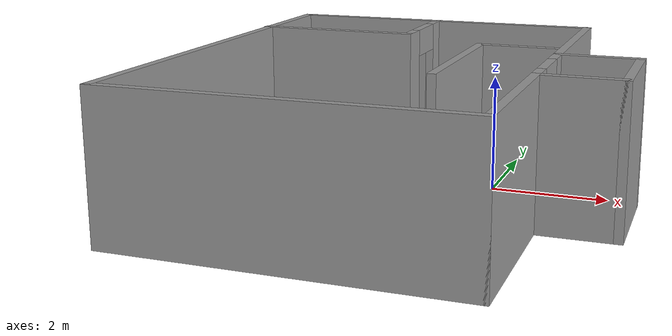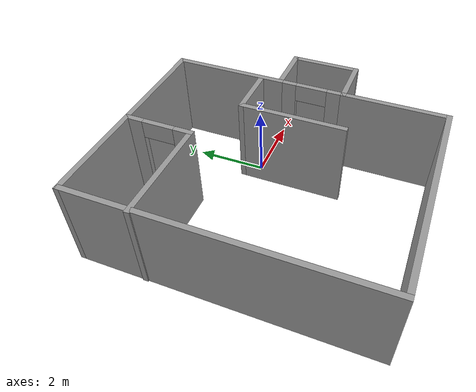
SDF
<?xml version='1.0'?>
<sdf version='1.7'>
  <model name='Room_B'>
    <pose>-1.18166 -0.957157 0 0 -0 0</pose>
    <link name='Wall_1'>
      <collision name='Wall_1_Collision'>
        <geometry>
          <box>
            <size>8 0.15 2.5</size>
          </box>
        </geometry>
        <pose>0 0 1.25 0 -0 0</pose>
      </collision>
      <visual name='Wall_1_Visual'>
        <pose>0 0 1.25 0 -0 0</pose>
        <geometry>
          <box>
            <size>8 0.15 2.5</size>
          </box>
        </geometry>
        <material>
          <script>
            <uri>file://media/materials/scripts/gazebo.material</uri>
            <name>Gazebo/Grey</name>
          </script>
          <ambient>1 1 1 1</ambient>
        </material>
        <meta>
          <layer>0</layer>
        </meta>
      </visual>
      <pose>-3.58489 -0 0 0 -0 -1.5708</pose>
    </link>
    <link name='Wall_11'>
      <pose>2.26511 -0.15 0 0 -0 -1.5708</pose>
      <visual name='Wall_11_Visual_0'>
        <pose>-0.722474 0 1.25 0 -0 0</pose>
        <geometry>
          <box>
            <size>0.555052 0.15 2.5</size>
          </box>
        </geometry>
        <material>
          <script>
            <uri>file://media/materials/scripts/gazebo.material</uri>
            <name>Gazebo/Grey</name>
          </script>
          <ambient>1 1 1 1</ambient>
        </material>
        <meta>
          <layer>0</layer>
        </meta>
      </visual>
      <collision name='Wall_11_Collision_0'>
        <geometry>
          <box>
            <size>0.555052 0.15 2.5</size>
          </box>
        </geometry>
        <pose>-0.722474 0 1.25 0 -0 0</pose>
      </collision>
      <visual name='Wall_11_Visual_1'>
        <pose>0.727526 0 1.25 0 -0 0</pose>
        <geometry>
          <box>
            <size>0.544948 0.15 2.5</size>
          </box>
        </geometry>
        <material>
          <script>
            <uri>file://media/materials/scripts/gazebo.material</uri>
            <name>Gazebo/Grey</name>
          </script>
          <ambient>1 1 1 1</ambient>
        </material>
        <meta>
          <layer>0</layer>
        </meta>
      </visual>
      <collision name='Wall_11_Collision_1'>
        <geometry>
          <box>
            <size>0.544948 0.15 2.5</size>
          </box>
        </geometry>
        <pose>0.727526 0 1.25 0 -0 0</pose>
      </collision>
      <visual name='Wall_11_Visual_2'>
        <pose>0.005052 0 2.25 0 -0 0</pose>
        <geometry>
          <box>
            <size>0.9 0.15 0.5</size>
          </box>
        </geometry>
        <material>
          <script>
            <uri>file://media/materials/scripts/gazebo.material</uri>
            <name>Gazebo/Grey</name>
          </script>
          <ambient>1 1 1 1</ambient>
        </material>
        <meta>
          <layer>0</layer>
        </meta>
      </visual>
      <collision name='Wall_11_Collision_2'>
        <geometry>
          <box>
            <size>0.9 0.15 0.5</size>
          </box>
        </geometry>
        <pose>0.005052 0 2.25 0 -0 0</pose>
      </collision>
    </link>
    <link name='Wall_13'>
      <collision name='Wall_13_Collision'>
        <geometry>
          <box>
            <size>3 0.15 2.5</size>
          </box>
        </geometry>
        <pose>0 0 1.25 0 -0 0</pose>
      </collision>
      <visual name='Wall_13_Visual'>
        <pose>0 0 1.25 0 -0 0</pose>
        <geometry>
          <box>
            <size>3 0.15 2.5</size>
          </box>
        </geometry>
        <material>
          <script>
            <uri>file://media/materials/scripts/gazebo.material</uri>
            <name>Gazebo/Grey</name>
          </script>
          <ambient>1 1 1 1</ambient>
        </material>
        <meta>
          <layer>0</layer>
        </meta>
      </visual>
      <pose>-2.19011 2.06543 0 0 -0 0</pose>
    </link>
    <link name='Wall_14'>
      <pose>-0.76511 2.99043 0 0 -0 1.5708</pose>
      <visual name='Wall_14_Visual_0'>
        <pose>-0.722555 0 1.25 0 -0 0</pose>
        <geometry>
          <box>
            <size>0.554889 0.15 2.5</size>
          </box>
        </geometry>
        <material>
          <script>
            <uri>file://media/materials/scripts/gazebo.material</uri>
            <name>Gazebo/Grey</name>
          </script>
          <ambient>1 1 1 1</ambient>
        </material>
        <meta>
          <layer>0</layer>
        </meta>
      </visual>
      <collision name='Wall_14_Collision_0'>
        <geometry>
          <box>
            <size>0.554889 0.15 2.5</size>
          </box>
        </geometry>
        <pose>-0.722555 0 1.25 0 -0 0</pose>
      </collision>
      <visual name='Wall_14_Visual_1'>
        <pose>0.727445 0 1.25 0 -0 0</pose>
        <geometry>
          <box>
            <size>0.545111 0.15 2.5</size>
          </box>
        </geometry>
        <material>
          <script>
            <uri>file://media/materials/scripts/gazebo.material</uri>
            <name>Gazebo/Grey</name>
          </script>
          <ambient>1 1 1 1</ambient>
        </material>
        <meta>
          <layer>0</layer>
        </meta>
      </visual>
      <collision name='Wall_14_Collision_1'>
        <geometry>
          <box>
            <size>0.545111 0.15 2.5</size>
          </box>
        </geometry>
        <pose>0.727445 0 1.25 0 -0 0</pose>
      </collision>
      <visual name='Wall_14_Visual_2'>
        <pose>0.004889 0 2.25 0 -0 0</pose>
        <geometry>
          <box>
            <size>0.9 0.15 0.5</size>
          </box>
        </geometry>
        <material>
          <script>
            <uri>file://media/materials/scripts/gazebo.material</uri>
            <name>Gazebo/Grey</name>
          </script>
          <ambient>1 1 1 1</ambient>
        </material>
        <meta>
          <layer>0</layer>
        </meta>
      </visual>
      <collision name='Wall_14_Collision_2'>
        <geometry>
          <box>
            <size>0.9 0.15 0.5</size>
          </box>
        </geometry>
        <pose>0.004889 0 2.25 0 -0 0</pose>
      </collision>
    </link>
    <link name='Wall_16'>
      <collision name='Wall_16_Collision'>
        <geometry>
          <box>
            <size>1.5 0.15 2.5</size>
          </box>
        </geometry>
        <pose>0 0 1.25 0 -0 0</pose>
      </collision>
      <visual name='Wall_16_Visual'>
        <pose>0 0 1.25 0 -0 0</pose>
        <geometry>
          <box>
            <size>1.5 0.15 2.5</size>
          </box>
        </geometry>
        <material>
          <script>
            <uri>file://media/materials/scripts/gazebo.material</uri>
            <name>Gazebo/Grey</name>
          </script>
          <ambient>1 1 1 1</ambient>
        </material>
        <meta>
          <layer>0</layer>
        </meta>
      </visual>
      <pose>1.47473 1.3403 0 0 -0 3.14159</pose>
    </link>
    <link name='Wall_17'>
      <collision name='Wall_17_Collision'>
        <geometry>
          <box>
            <size>3 0.15 2.5</size>
          </box>
        </geometry>
        <pose>0 0 1.25 0 -0 0</pose>
      </collision>
      <visual name='Wall_17_Visual'>
        <pose>0 0 1.25 0 -0 0</pose>
        <geometry>
          <box>
            <size>3 0.15 2.5</size>
          </box>
        </geometry>
        <material>
          <script>
            <uri>file://media/materials/scripts/gazebo.material</uri>
            <name>Gazebo/Grey</name>
          </script>
          <ambient>1 1 1 1</ambient>
        </material>
        <meta>
          <layer>0</layer>
        </meta>
      </visual>
      <pose>0.799734 -0.084704 0 0 -0 -1.5708</pose>
    </link>
    <link name='Wall_2'>
      <collision name='Wall_2_Collision'>
        <geometry>
          <box>
            <size>6 0.15 2.5</size>
          </box>
        </geometry>
        <pose>0 0 1.25 0 -0 0</pose>
      </collision>
      <visual name='Wall_2_Visual'>
        <pose>0 0 1.25 0 -0 0</pose>
        <geometry>
          <box>
            <size>6 0.15 2.5</size>
          </box>
        </geometry>
        <material>
          <script>
            <uri>file://media/materials/scripts/gazebo.material</uri>
            <name>Gazebo/Grey</name>
          </script>
          <ambient>1 1 1 1</ambient>
        </material>
        <meta>
          <layer>0</layer>
        </meta>
      </visual>
      <pose>-0.65989 -3.925 0 0 -0 0</pose>
    </link>
    <link name='Wall_3'>
      <collision name='Wall_3_Collision'>
        <geometry>
          <box>
            <size>3 0.15 2.5</size>
          </box>
        </geometry>
        <pose>0 0 1.25 0 -0 0</pose>
      </collision>
      <visual name='Wall_3_Visual'>
        <pose>0 0 1.25 0 -0 0</pose>
        <geometry>
          <box>
            <size>3 0.15 2.5</size>
          </box>
        </geometry>
        <material>
          <script>
            <uri>file://media/materials/scripts/gazebo.material</uri>
            <name>Gazebo/Grey</name>
          </script>
          <ambient>1 1 1 1</ambient>
        </material>
        <meta>
          <layer>0</layer>
        </meta>
      </visual>
      <pose>2.26511 -2.5 0 0 -0 1.5708</pose>
    </link>
    <link name='Wall_4'>
      <collision name='Wall_4_Collision'>
        <geometry>
          <box>
            <size>1.5 0.15 2.5</size>
          </box>
        </geometry>
        <pose>0 0 1.25 0 -0 0</pose>
      </collision>
      <visual name='Wall_4_Visual'>
        <pose>0 0 1.25 0 -0 0</pose>
        <geometry>
          <box>
            <size>1.5 0.15 2.5</size>
          </box>
        </geometry>
        <material>
          <script>
            <uri>file://media/materials/scripts/gazebo.material</uri>
            <name>Gazebo/Grey</name>
          </script>
          <ambient>1 1 1 1</ambient>
        </material>
        <meta>
          <layer>0</layer>
        </meta>
      </visual>
      <pose>2.94011 -1.075 0 0 -0 0</pose>
    </link>
    <link name='Wall_5'>
      <collision name='Wall_5_Collision'>
        <geometry>
          <box>
            <size>2 0.15 2.5</size>
          </box>
        </geometry>
        <pose>0 0 1.25 0 -0 0</pose>
      </collision>
      <visual name='Wall_5_Visual'>
        <pose>0 0 1.25 0 -0 0</pose>
        <geometry>
          <box>
            <size>2 0.15 2.5</size>
          </box>
        </geometry>
        <material>
          <script>
            <uri>file://media/materials/scripts/gazebo.material</uri>
            <name>Gazebo/Grey</name>
          </script>
          <ambient>1 1 1 1</ambient>
        </material>
        <meta>
          <layer>0</layer>
        </meta>
      </visual>
      <pose>3.61511 -0.15 0 0 -0 1.5708</pose>
    </link>
    <link name='Wall_6'>
      <collision name='Wall_6_Collision'>
        <geometry>
          <box>
            <size>1.5 0.15 2.5</size>
          </box>
        </geometry>
        <pose>0 0 1.25 0 -0 0</pose>
      </collision>
      <visual name='Wall_6_Visual'>
        <pose>0 0 1.25 0 -0 0</pose>
        <geometry>
          <box>
            <size>1.5 0.15 2.5</size>
          </box>
        </geometry>
        <material>
          <script>
            <uri>file://media/materials/scripts/gazebo.material</uri>
            <name>Gazebo/Grey</name>
          </script>
          <ambient>1 1 1 1</ambient>
        </material>
        <meta>
          <layer>0</layer>
        </meta>
      </visual>
      <pose>2.94011 0.775 0 0 -0 3.14159</pose>
    </link>
    <link name='Wall_8'>
      <collision name='Wall_8_Collision'>
        <geometry>
          <box>
            <size>6 0.15 2.5</size>
          </box>
        </geometry>
        <pose>0 0 1.25 0 -0 0</pose>
      </collision>
      <visual name='Wall_8_Visual'>
        <pose>0 0 1.25 0 -0 0</pose>
        <geometry>
          <box>
            <size>6 0.15 2.5</size>
          </box>
        </geometry>
        <material>
          <script>
            <uri>file://media/materials/scripts/gazebo.material</uri>
            <name>Gazebo/Grey</name>
          </script>
          <ambient>1 1 1 1</ambient>
        </material>
        <meta>
          <layer>0</layer>
        </meta>
      </visual>
      <pose>-0.65989 3.925 0 0 -0 0</pose>
    </link>
    <link name='Wall_9'>
      <collision name='Wall_9_Collision'>
        <geometry>
          <box>
            <size>3.3 0.15 2.5</size>
          </box>
        </geometry>
        <pose>0 0 1.25 0 -0 0</pose>
      </collision>
      <visual name='Wall_9_Visual'>
        <pose>0 0 1.25 0 -0 0</pose>
        <geometry>
          <box>
            <size>3.3 0.15 2.5</size>
          </box>
        </geometry>
        <material>
          <script>
            <uri>file://media/materials/scripts/gazebo.material</uri>
            <name>Gazebo/Grey</name>
          </script>
          <ambient>1 1 1 1</ambient>
        </material>
        <meta>
          <layer>0</layer>
        </meta>
      </visual>
      <pose>2.26511 2.35 0 0 -0 -1.5708</pose>
    </link>
    <static>1</static>
  </model>
</sdf>
